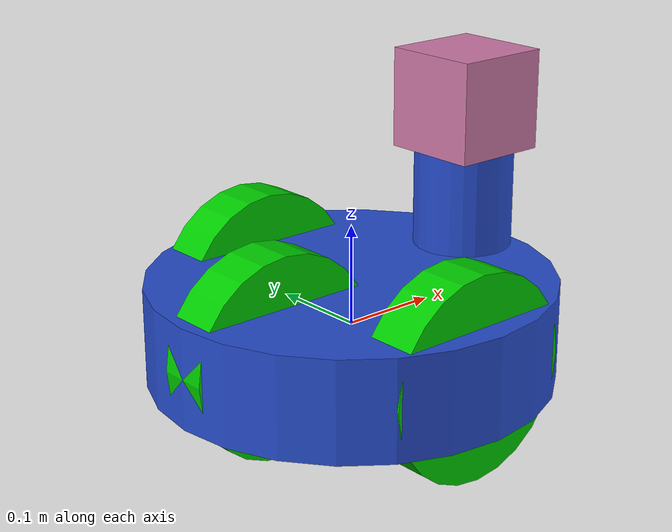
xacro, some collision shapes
<?xml version='1.0'?>

<robot name="chuck_bot" xmlns:xacro="http://www.ros.org/wiki/xacro">

  <xacro:include filename="$(find udacity_bot)/urdf/chuck_bot.gazebo" />

  <material name="blue">
     <color rgba="0 0 0.8 1"/>
  </material>

  <material name="green">
     <color rgba="0 .8 0 1"/>
  </material>

  <link name="robot_footprint"></link>

  <joint name="robot_footprint_joint" type="fixed">
    <origin xyz="0 0 0" rpy="0 0 0" />
    <parent link="robot_footprint"/>
    <child link="chassis" />
  </joint>

  <link name='chassis'>
    <pose>0 0 0.1 0 0 0</pose>

    <inertial>
      <mass value="15.0"/>
      <origin xyz="0.0 0 0" rpy=" 0 0 0"/>
      <inertia
          ixx="0.1" ixy="0" ixz="0"
          iyy="0.1" iyz="0"
          izz="0.1"
      />
    </inertial>

    <collision name='collision'>
      <origin xyz="0 0 0" rpy=" 0 0 0"/>
      <geometry>
        <cylinder radius=".2" length=".1"/>

      </geometry>
    </collision>

    <visual name='chassis_visual'>
      <origin xyz="0 0 0" rpy=" 0 0 0"/>
      <geometry>
        <cylinder radius=".2" length=".1"/>

      </geometry>
    </visual>

    <collision name='tower'>
      <origin xyz="0 0 0.1" rpy=" 0 0 0"/>
      <geometry>
          <cylinder radius="0.05" length="0.2"/>

      </geometry>
    </collision>

    <visual name='tower_visual'>
      <origin xyz=".15 0 0.1" rpy=" 0 0 0"/>
      <geometry>
        <cylinder radius="0.05" length="0.2"/>
      </geometry>
    </visual>

    <collision name='front_caster_collision'>
      <origin xyz="0.15 0 -0.05" rpy=" 0 0 0"/>
      <geometry>
        <sphere radius="0.0499"/>
      </geometry>
      <surface>
        <friction>
          <ode>
            <mu>0</mu>
            <mu2>0</mu2>
            <slip1>1.0</slip1>
            <slip2>1.0</slip2>
          </ode>
        </friction>
      </surface>
    </collision>

    <visual name='front_caster_visual'>
      <origin xyz="0.15 0 -0.05" rpy=" 0 0 0"/>
      <geometry>
        <sphere radius="0.0499"/>
      </geometry>
    </visual>

  </link>

  <link name='right_wheel'>

    <inertial>
      <mass value="5.0"/>
      <origin xyz="0 0 0" rpy="0 1.57 1.57"/>
      <inertia
          ixx="0.1" ixy="0" ixz="0"
          iyy="0.1" iyz="0"
          izz="0.1"
      />
    </inertial>

    <collision>
      <origin xyz="0 0 0" rpy="0 1.57 1.57"/>
      <geometry>
        <cylinder length="0.05" radius="0.1"/>
      </geometry>
    </collision>

    <visual>
      <origin xyz="0 0 0" rpy="0 1.57 1.57"/>
      <material name="green"/>

      <geometry>
        <cylinder length="0.05" radius="0.1"/>
      </geometry>
    </visual>

  </link>

  <link name='left_wheel'>

    <inertial>
      <mass value="5.0"/>
      <origin xyz="0 0 0" rpy="0 1.57 1.57"/>
      <inertia
          ixx="0.1" ixy="0" ixz="0"
          iyy="0.1" iyz="0"
          izz="0.1"
      />
    </inertial>

    <collision>
      <origin xyz="0 0 0" rpy="0 1.57 1.57"/>
      <geometry>
        <cylinder length="0.05" radius="0.1"/>
      </geometry>
    </collision>

    <visual>
      <origin xyz="0 0 0" rpy="0 1.57 1.57"/>
      <material name="green"/>

      <geometry>
        <cylinder length="0.05" radius="0.1"/>
      </geometry>
    </visual>

  </link>

  <link name='rear_wheel'>

    <inertial>
      <mass value="5.0"/>
      <origin xyz="0 0 0" rpy="0 1.57 1.57"/>
      <inertia
          ixx="0.1" ixy="0" ixz="0"
          iyy="0.1" iyz="0"
          izz="0.1"
      />
    </inertial>

    <collision>
      <origin xyz="0 0 0" rpy="0 1.57 1.57"/>
      <geometry>
        <cylinder length="0.05" radius="0.1"/>
      </geometry>
    </collision>

    <visual>
      <origin xyz="0 0 0" rpy="0 1.57 1.57"/>
      <material name="green"/>

      <geometry>
        <cylinder length="0.05" radius="0.1"/>
      </geometry>
    </visual>

  </link>

  <joint type="continuous" name="right_wheel_hinge">
    <origin xyz="0 -0.15 0" rpy="0 0 0"/>
    <child link="right_wheel"/>
    <parent link="chassis"/>
    <axis xyz="0 1 0" rpy="0 0 0"/>
    <limit effort="10000" velocity="1000"/>
    <joint_properties damping="1.0" friction="1.0"/>
  </joint>

  <joint type="continuous" name="left_wheel_hinge">
    <origin xyz="0 0.15 0" rpy="0 0 0"/>
    <child link="left_wheel"/>
    <parent link="chassis"/>
    <axis xyz="0 1 0" rpy="0 0 0"/>
    <limit effort="10000" velocity="1000"/>
    <joint_properties damping="1.0" friction="1.0"/>
  </joint>

  <joint type="continuous" name="rear_wheel_hinge">
    <origin xyz="-.1 0 0" rpy="0 0 0"/>
    <child link="rear_wheel"/>
    <parent link="chassis"/>
    <axis xyz="0 1 0" rpy="0 0 0"/>
    <limit effort="10000" velocity="1000"/>
    <joint_properties damping="1.0" friction="1.0"/>
  </joint>

  <link name='camera'>

    <inertial>
      <mass value="0.1"/>
      <origin xyz="0 0 0" rpy="0 0 0"/>
      <inertia
          ixx="1e-6" ixy="0" ixz="0"
          iyy="1e-6" iyz="0"
          izz="1e-6"
      />
    </inertial>

    <collision>
      <origin xyz="0 0 0" rpy="0 0 0"/>
      <geometry>
        <box size=".05 .05 .05"/>
      </geometry>
    </collision>

    <visual>
      <origin xyz="0 0 0" rpy="0 0 0"/>

      <material name="green"/>

      <geometry>
        <box size=".05 .05 .05"/>
      </geometry>
    </visual>

  </link>

  <joint type="fixed" name="camera_joint">
    <origin xyz="0.2 0 0" rpy="0 0 0"/>
    <child link="camera"/>
    <parent link="chassis"/>
    <axis xyz="0 1 0" rpy="0 0 0"/>
  </joint>

  <link name='hokuyo'>

    <inertial>
      <mass value="0.1"/>
      <origin xyz="0 0 0" rpy="0 0 0"/>
      <inertia
          ixx="1e-6" ixy="0" ixz="0"
          iyy="1e-6" iyz="0"
          izz="1e-6"
      />
    </inertial>

    <collision>
      <origin xyz="0 0 0" rpy="0 0 0"/>
      <geometry>
        <box size=".1 .1 .1"/>
      </geometry>
    </collision>

    <visual>
      <origin xyz="0 0 0" rpy="0 0 0"/>
      <geometry>
        <mesh filename="package://udacity_bot/meshes/hokuyo.dae"/>
      </geometry>
    </visual>

  </link>

  <joint type="fixed" name="hokuyo_joint">
    <origin xyz="0.15 0 0.2" rpy="0 0 0"/>
    <child link="hokuyo"/>
    <parent link="chassis"/>
    <axis xyz="0 1 0" rpy="0 0 0"/>
  </joint>

</robot>
